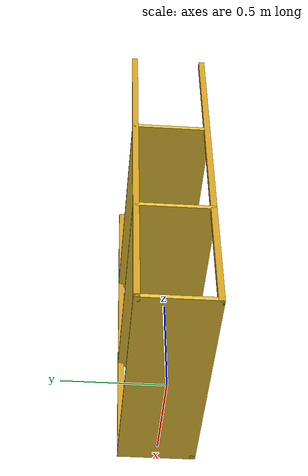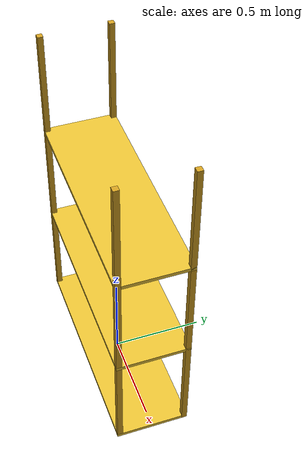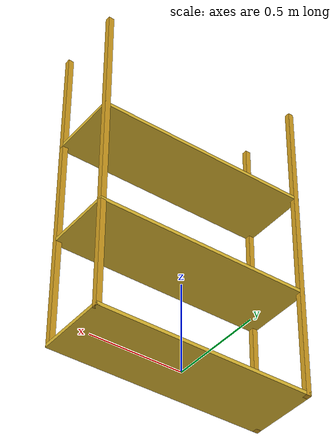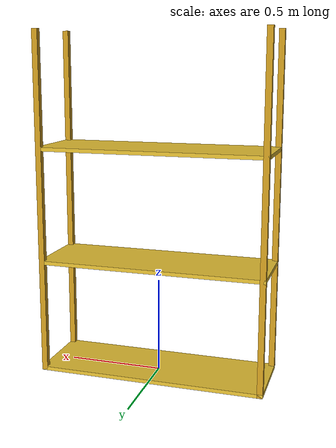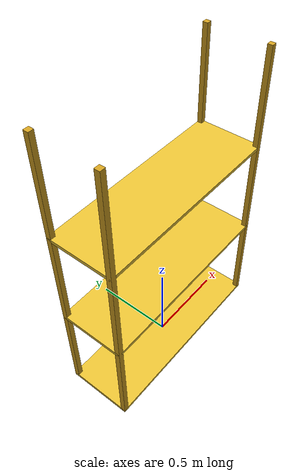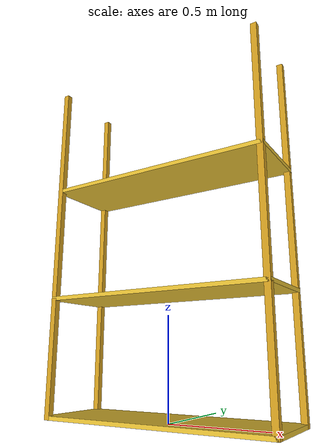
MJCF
<mujoco model="metal_shelf">
  <option integrator="implicitfast" timestep="0.005" gravity="0 0 -9.81"/>
  <size memory="1000M" nuser_site="6"/>
  <compiler coordinate="local"/>

  <default>
    <default class="shelf_post">
      <geom type="box" contype="1" conaffinity="1" density="7800"
            rgba="0.82 0.62 0.12 1"
            solimp="0.9 0.95 0.001" friction="1 0.005 0.0001"
            solref="0.02 1" priority="0" margin="0" condim="3" group="0"/>
    </default>
    <default class="shelf_board">
      <geom type="box" contype="1" conaffinity="1" density="7800"
            rgba="0.90 0.75 0.20 1"
            solimp="0.9 0.95 0.001" friction="1 0.005 0.0001"
            solref="0.02 1" priority="0" margin="0" condim="3" group="0"/>
    </default>
  </default>

  <worldbody>
    <light cutoff="30" pos="0 1 1" dir="0 -1 -2"/>
    <light cutoff="30" pos="0 -1 1" dir="0 1 -2"/>

    <!--
      Metal warehouse shelf
      Overall: 1.2m (X) x 0.4m (Y) x 1.8m (Z)
      4 vertical posts + 3 shelf boards + X-cross braces on back
      Bottom at z=0
    -->
    <body name="metal_shelf" pos="0 0 0">

      <!-- ====== 4 Vertical Posts (0.03 x 0.03 x 1.8) ====== -->
      <!-- Front-Left -->
      <geom class="shelf_post" pos="-0.585 -0.185 0.9"
            size="0.015 0.015 0.9" name="post_fl"/>
      <!-- Front-Right -->
      <geom class="shelf_post" pos="0.585 -0.185 0.9"
            size="0.015 0.015 0.9" name="post_fr"/>
      <!-- Back-Left -->
      <geom class="shelf_post" pos="-0.585 0.185 0.9"
            size="0.015 0.015 0.9" name="post_bl"/>
      <!-- Back-Right -->
      <geom class="shelf_post" pos="0.585 0.185 0.9"
            size="0.015 0.015 0.9" name="post_br"/>

      <!-- ====== 3 Shelf Boards (1.2 x 0.4 x 0.02) ====== -->
      <!-- Bottom shelf at z=0.01 -->
      <geom class="shelf_board" pos="0 0 0.01"
            size="0.6 0.2 0.01" name="board_0"/>
      <!-- Middle shelf at z=0.6 -->
      <geom class="shelf_board" pos="0 0 0.6"
            size="0.6 0.2 0.01" name="board_1"/>
      <!-- Top shelf at z=1.2 -->
      <geom class="shelf_board" pos="0 0 1.2"
            size="0.6 0.2 0.01" name="board_2"/>

    </body>
  </worldbody>

  <tendon/>
  <actuator/>
  <contact/>
  <equality/>
  <asset/>
</mujoco>
